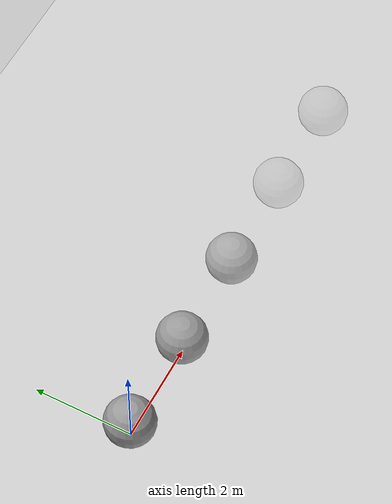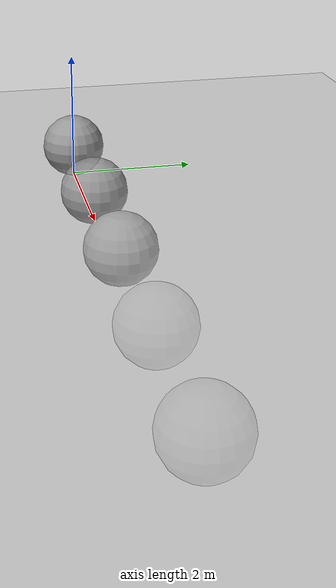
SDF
<sdf version='1.4'>
  <world name='default'>
    <!-- include sun and ground plane -->
    <include><uri>model://sun</uri></include>
    <include><uri>model://ground_plane</uri></include>

    <model name="test_model">
      <static>true</static>
      <link name="link">
        <visual name="visual_00">
          <pose>0 0 0.5  0 0 0</pose>
          <transparency>0.0</transparency>
          <geometry>
            <sphere><radius>0.5</radius></sphere>
          </geometry>
          <material><script>
            <uri>file://media/materials/scripts/gazebo.material</uri>
            <name>Gazebo/Grey</name>
          </script></material>
        </visual>
        <visual name="visual_02">
          <pose>2 0 0.5  0 0 0</pose>
          <transparency>0.2</transparency>
          <geometry>
            <sphere><radius>0.5</radius></sphere>
          </geometry>
          <material><script>
            <uri>file://media/materials/scripts/gazebo.material</uri>
            <name>Gazebo/Grey</name>
          </script></material>
        </visual>
        <visual name="visual_04">
          <pose>4 0 0.5  0 0 0</pose>
          <transparency>0.4</transparency>
          <geometry>
            <sphere><radius>0.5</radius></sphere>
          </geometry>
          <material><script>
            <uri>file://media/materials/scripts/gazebo.material</uri>
            <name>Gazebo/Grey</name>
          </script></material>
        </visual>
        <visual name="visual_06">
          <pose>6 0 0.5  0 0 0</pose>
          <transparency>0.8</transparency>
          <geometry>
            <sphere><radius>0.5</radius></sphere>
          </geometry>
          <material><script>
            <uri>file://media/materials/scripts/gazebo.material</uri>
            <name>Gazebo/Grey</name>
          </script></material>
        </visual>
        <visual name="visual_08">
          <pose>8 0 0.5  0 0 0</pose>
          <transparency>0.8</transparency>
          <geometry>
            <sphere><radius>0.5</radius></sphere>
          </geometry>
          <material><script>
            <uri>file://media/materials/scripts/gazebo.material</uri>
            <name>Gazebo/Grey</name>
          </script></material>
        </visual>
        <visual name="visual_10">
          <pose>10 0 0.5  0 0 0</pose>
          <transparency>1.0</transparency>
          <geometry>
            <sphere><radius>0.5</radius></sphere>
          </geometry>
          <material><script>
            <uri>file://media/materials/scripts/gazebo.material</uri>
            <name>Gazebo/Grey</name>
          </script></material>
        </visual>
      </link>
    </model>
    <gui fullscreen='0'>
      <camera name='user_camera'>
        <pose>5.0 -10.0 1.5  0.0 0.0 1.57079</pose>
        <view_controller>orbit</view_controller>
      </camera>
    </gui>
  </world>
</sdf>
